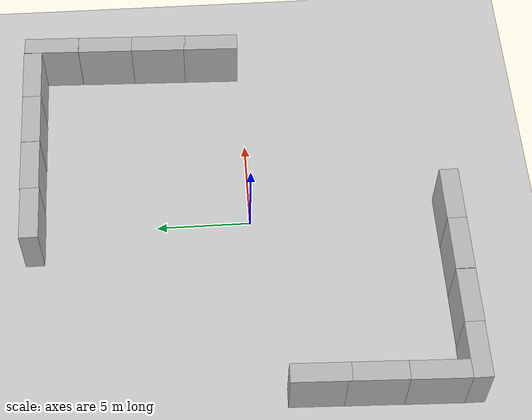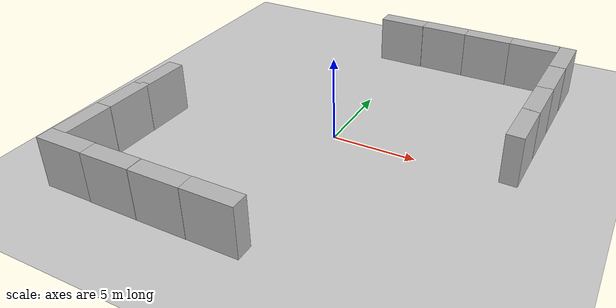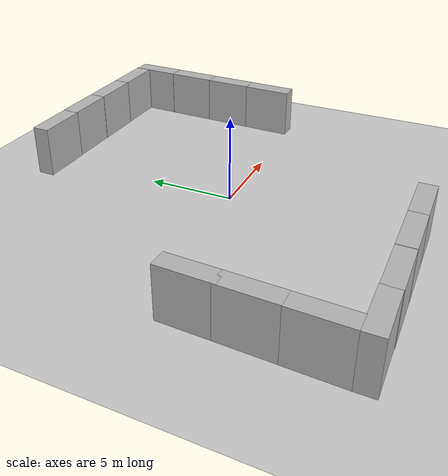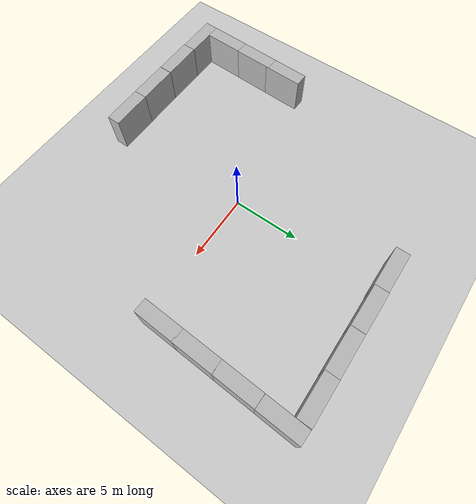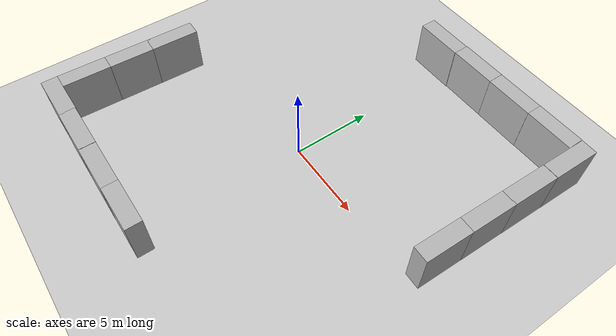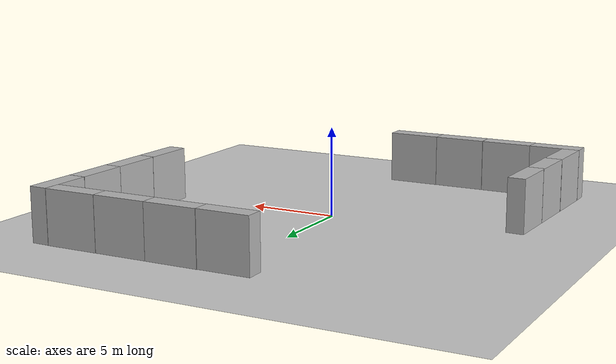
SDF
<sdf version="1.6">
 <world name="default">
  <scene><ambient>0.4 0.4 0.4 1</ambient><background>0.7 0.7 0.7 1</background><shadows>0</shadows></scene>
  <light name="sun" type="directional">
   <cast_shadows>0</cast_shadows>
   <pose>0 0 10 0 -0 0</pose>
   <diffuse>0.8 0.8 0.8 1</diffuse>
   <specular>0.2 0.2 0.2 1</specular>
   <attenuation>
    <range>1000</range>
    <constant>0.9</constant>
    <linear>0.01</linear>
    <quadratic>0.001</quadratic>
   </attenuation>
   <direction>-0.5 0.1 -0.9</direction>
  </light>
  <model name="ground_plane">
   <static>1</static>
   <link name="link">
    <collision name="collision">
     <geometry><plane><normal>0 0 1</normal><size>100 100</size></plane></geometry>
     <surface><friction><ode><mu>100</mu><mu2>50</mu2></ode></friction></surface>
    </collision>
    <visual name="visual">
     <cast_shadows>0</cast_shadows>
     <geometry><plane><normal>0 0 1</normal><size>100 100</size></plane></geometry>
     <material>
      <script><uri>file://media/materials/scripts/gazebo.material</uri><name>Gazebo/Grey</name></script>
     </material>
    </visual>
   </link>
  </model>
  <physics name="default_physics" default="0" type="ode">
   <real_time_update_rate>1000</real_time_update_rate>
   <max_step_size>0.001</max_step_size>
   <real_time_factor>1</real_time_factor>
   <ode>
    <solver>
     <type>quick</type>
     <iters>150</iters>
     <precon_iters>0</precon_iters>
     <sor>1.4</sor>
     <use_dynamic_moi_rescaling>1</use_dynamic_moi_rescaling>
    </solver>
    <constraints>
     <cfm>1e-05</cfm>
     <erp>0.2</erp>
     <contact_max_correcting_vel>2000</contact_max_correcting_vel>
     <contact_surface_layer>0.01</contact_surface_layer>
    </constraints>
   </ode>
  </physics>
  <gravity>0 0 -9.8</gravity>
  <magnetic_field>6e-06 2.3e-05 -4.2e-05</magnetic_field>
  <atmosphere type="adiabatic"/>
  <spherical_coordinates>
   <surface_model>EARTH_WGS84</surface_model>
   <latitude_deg>0</latitude_deg>
   <longitude_deg>0</longitude_deg>
   <elevation>0</elevation>
   <heading_deg>0</heading_deg>
  </spherical_coordinates>
  <model name="brick_box_3x1x3">
   <static>1</static>
   <link name="chassis">
    <pose>0 0 1.5 0 -0 0</pose>
    <collision name="collision"><geometry><box><size>3 1 3</size></box></geometry></collision>
    <visual name="visual">
     <geometry><mesh><uri>model://brick_box_3x1x3/meshes/simple_box.dae</uri><scale>3 1 3</scale></mesh></geometry>
     <material>
      <script>
       <uri>model://brick_box_3x1x3/materials/scripts</uri>
       <uri>model://brick_box_3x1x3/materials/textures</uri>
       <name>BrickBox/Diffuse</name>
      </script>
     </material>
    </visual>
   </link>
   <pose>8.51231 11.5321 0 0 -0 0</pose>
  </model>
  <model name="brick_box_3x1x3_0">
   <static>1</static>
   <link name="chassis">
    <pose>0 0 1.5 0 -0 0</pose>
    <collision name="collision"><geometry><box><size>3 1 3</size></box></geometry></collision>
    <visual name="visual">
     <geometry><mesh><uri>model://brick_box_3x1x3/meshes/simple_box.dae</uri><scale>3 1 3</scale></mesh></geometry>
     <material>
      <script>
       <uri>model://brick_box_3x1x3/materials/scripts</uri>
       <uri>model://brick_box_3x1x3/materials/textures</uri>
       <name>BrickBox/Diffuse</name>
      </script>
     </material>
    </visual>
   </link>
   <pose>5.51295 11.5204 0 0 -0 0</pose>
  </model>
  <model name="brick_box_3x1x3_1">
   <static>1</static>
   <link name="chassis">
    <pose>0 0 1.5 0 -0 0</pose>
    <collision name="collision"><geometry><box><size>3 1 3</size></box></geometry></collision>
    <visual name="visual">
     <geometry><mesh><uri>model://brick_box_3x1x3/meshes/simple_box.dae</uri><scale>3 1 3</scale></mesh></geometry>
     <material>
      <script>
       <uri>model://brick_box_3x1x3/materials/scripts</uri>
       <uri>model://brick_box_3x1x3/materials/textures</uri>
       <name>BrickBox/Diffuse</name>
      </script>
     </material>
    </visual>
   </link>
   <pose>2.50753 11.5257 0 0 -0 0</pose>
  </model>
  <model name="brick_box_3x1x3_2">
   <static>1</static>
   <link name="chassis">
    <pose>0 0 1.5 0 -0 0</pose>
    <collision name="collision"><geometry><box><size>3 1 3</size></box></geometry></collision>
    <visual name="visual">
     <geometry><mesh><uri>model://brick_box_3x1x3/meshes/simple_box.dae</uri><scale>3 1 3</scale></mesh></geometry>
     <material>
      <script>
       <uri>model://brick_box_3x1x3/materials/scripts</uri>
       <uri>model://brick_box_3x1x3/materials/textures</uri>
       <name>BrickBox/Diffuse</name>
      </script>
     </material>
    </visual>
   </link>
   <pose>10.5 10.5 0 0 0 -1.6</pose>
  </model>
  <model name="brick_box_3x1x3_2_clone">
   <static>1</static>
   <link name="chassis">
    <pose>0 0 1.5 0 -0 0</pose>
    <collision name="collision"><geometry><box><size>3 1 3</size></box></geometry></collision>
    <visual name="visual">
     <geometry><mesh><uri>model://brick_box_3x1x3/meshes/simple_box.dae</uri><scale>3 1 3</scale></mesh></geometry>
     <material>
      <script>
       <uri>model://brick_box_3x1x3/materials/scripts</uri>
       <uri>model://brick_box_3x1x3/materials/textures</uri>
       <name>BrickBox/Diffuse</name>
      </script>
     </material>
    </visual>
   </link>
   <pose>10.408 7.49311 0 0 0 -1.6</pose>
  </model>
  <model name="brick_box_3x1x3_2_clone_0">
   <static>1</static>
   <link name="chassis">
    <pose>0 0 1.5 0 -0 0</pose>
    <collision name="collision"><geometry><box><size>3 1 3</size></box></geometry></collision>
    <visual name="visual">
     <geometry><mesh><uri>model://brick_box_3x1x3/meshes/simple_box.dae</uri><scale>3 1 3</scale></mesh></geometry>
     <material>
      <script>
       <uri>model://brick_box_3x1x3/materials/scripts</uri>
       <uri>model://brick_box_3x1x3/materials/textures</uri>
       <name>BrickBox/Diffuse</name>
      </script>
     </material>
    </visual>
   </link>
   <pose>10.3204 4.5392 0 0 0 -1.6</pose>
  </model>
  <model name="brick_box_3x1x3_2_clone_1">
   <static>1</static>
   <link name="chassis">
    <pose>0 0 1.5 0 -0 0</pose>
    <collision name="collision"><geometry><box><size>3 1 3</size></box></geometry></collision>
    <visual name="visual">
     <geometry><mesh><uri>model://brick_box_3x1x3/meshes/simple_box.dae</uri><scale>3 1 3</scale></mesh></geometry>
     <material>
      <script>
       <uri>model://brick_box_3x1x3/materials/scripts</uri>
       <uri>model://brick_box_3x1x3/materials/textures</uri>
       <name>BrickBox/Diffuse</name>
      </script>
     </material>
    </visual>
   </link>
   <pose>10.2323 1.62461 0 0 0 -1.6</pose>
  </model>
  <model name="brick_box_3x1x3_2_clone_1_clone">
   <static>1</static>
   <link name="chassis">
    <pose>0 0 1.5 0 -0 0</pose>
    <collision name="collision"><geometry><box><size>3 1 3</size></box></geometry></collision>
    <visual name="visual">
     <geometry><mesh><uri>model://brick_box_3x1x3/meshes/simple_box.dae</uri><scale>3 1 3</scale></mesh></geometry>
     <material>
      <script>
       <uri>model://brick_box_3x1x3/materials/scripts</uri>
       <uri>model://brick_box_3x1x3/materials/textures</uri>
       <name>BrickBox/Diffuse</name>
      </script>
     </material>
    </visual>
   </link>
   <pose>-10.4741 -8.49572 0 0 0 -1.6</pose>
  </model>
  <model name="brick_box_3x1x3_2_clone_1_clone_0">
   <static>1</static>
   <link name="chassis">
    <pose>0 0 1.5 0 -0 0</pose>
    <collision name="collision"><geometry><box><size>3 1 3</size></box></geometry></collision>
    <visual name="visual">
     <geometry><mesh><uri>model://brick_box_3x1x3/meshes/simple_box.dae</uri><scale>3 1 3</scale></mesh></geometry>
     <material>
      <script>
       <uri>model://brick_box_3x1x3/materials/scripts</uri>
       <uri>model://brick_box_3x1x3/materials/textures</uri>
       <name>BrickBox/Diffuse</name>
      </script>
     </material>
    </visual>
   </link>
   <pose>-10.3773 -5.51079 0 0 0 -1.6</pose>
  </model>
  <model name="brick_box_3x1x3_2_clone_1_clone_1">
   <static>1</static>
   <link name="chassis">
    <pose>0 0 1.5 0 -0 0</pose>
    <collision name="collision"><geometry><box><size>3 1 3</size></box></geometry></collision>
    <visual name="visual">
     <geometry><mesh><uri>model://brick_box_3x1x3/meshes/simple_box.dae</uri><scale>3 1 3</scale></mesh></geometry>
     <material>
      <script>
       <uri>model://brick_box_3x1x3/materials/scripts</uri>
       <uri>model://brick_box_3x1x3/materials/textures</uri>
       <name>BrickBox/Diffuse</name>
      </script>
     </material>
    </visual>
   </link>
   <pose>-10.2931 -2.72387 0 0 0 -1.6</pose>
  </model>
  <model name="brick_box_3x1x3_1_clone">
   <static>1</static>
   <link name="chassis">
    <pose>0 0 1.5 0 -0 0</pose>
    <collision name="collision"><geometry><box><size>3 1 3</size></box></geometry></collision>
    <visual name="visual">
     <geometry><mesh><uri>model://brick_box_3x1x3/meshes/simple_box.dae</uri><scale>3 1 3</scale></mesh></geometry>
     <material>
      <script>
       <uri>model://brick_box_3x1x3/materials/scripts</uri>
       <uri>model://brick_box_3x1x3/materials/textures</uri>
       <name>BrickBox/Diffuse</name>
      </script>
     </material>
    </visual>
   </link>
   <pose>-9.51989 -10.48 0 0 -0 0</pose>
  </model>
  <model name="brick_box_3x1x3_1_clone_0">
   <static>1</static>
   <link name="chassis">
    <pose>0 0 1.5 0 -0 0</pose>
    <collision name="collision"><geometry><box><size>3 1 3</size></box></geometry></collision>
    <visual name="visual">
     <geometry><mesh><uri>model://brick_box_3x1x3/meshes/simple_box.dae</uri><scale>3 1 3</scale></mesh></geometry>
     <material>
      <script>
       <uri>model://brick_box_3x1x3/materials/scripts</uri>
       <uri>model://brick_box_3x1x3/materials/textures</uri>
       <name>BrickBox/Diffuse</name>
      </script>
     </material>
    </visual>
   </link>
   <pose>-6.56111 -10.5008 0 0 -0 0</pose>
  </model>
  <model name="brick_box_3x1x3_1_clone_1">
   <static>1</static>
   <link name="chassis">
    <pose>0 0 1.5 0 -0 0</pose>
    <collision name="collision"><geometry><box><size>3 1 3</size></box></geometry></collision>
    <visual name="visual">
     <geometry><mesh><uri>model://brick_box_3x1x3/meshes/simple_box.dae</uri><scale>3 1 3</scale></mesh></geometry>
     <material>
      <script>
       <uri>model://brick_box_3x1x3/materials/scripts</uri>
       <uri>model://brick_box_3x1x3/materials/textures</uri>
       <name>BrickBox/Diffuse</name>
      </script>
     </material>
    </visual>
   </link>
   <pose>-3.54203 -10.5047 0 0 -0 0</pose>
  </model>
  <model name="brick_box_3x1x3_1_clone_2">
   <static>1</static>
   <link name="chassis">
    <pose>0 0 1.5 0 -0 0</pose>
    <collision name="collision"><geometry><box><size>3 1 3</size></box></geometry></collision>
    <visual name="visual">
     <geometry><mesh><uri>model://brick_box_3x1x3/meshes/simple_box.dae</uri><scale>3 1 3</scale></mesh></geometry>
     <material>
      <script>
       <uri>model://brick_box_3x1x3/materials/scripts</uri>
       <uri>model://brick_box_3x1x3/materials/textures</uri>
       <name>BrickBox/Diffuse</name>
      </script>
     </material>
    </visual>
   </link>
   <pose>-0.558762 -10.496 0 0 -0 0</pose>
  </model>
  <model name="brick_box_3x1x3_1_clone_3">
   <static>1</static>
   <link name="chassis">
    <pose>0 0 1.5 0 -0 0</pose>
    <collision name="collision"><geometry><box><size>3 1 3</size></box></geometry></collision>
    <visual name="visual">
     <geometry><mesh><uri>model://brick_box_3x1x3/meshes/simple_box.dae</uri><scale>3 1 3</scale></mesh></geometry>
     <material>
      <script>
       <uri>model://brick_box_3x1x3/materials/scripts</uri>
       <uri>model://brick_box_3x1x3/materials/textures</uri>
       <name>BrickBox/Diffuse</name>
      </script>
     </material>
    </visual>
   </link>
   <pose>-0.446952 11.4922 0 0 -0 0</pose>
  </model>
  <light name="user_spot_light_0" type="spot">
   <pose>8.96806 9.98161 1 0 -0 0</pose>
   <diffuse>0.5 0.5 0.5 1</diffuse>
   <specular>0.1 0.1 0.1 1</specular>
   <direction>0 0 -1</direction>
   <attenuation>
    <range>20</range>
    <constant>0.5</constant>
    <linear>0.01</linear>
    <quadratic>0.001</quadratic>
   </attenuation>
   <cast_shadows>0</cast_shadows>
   <spot><inner_angle>0.6</inner_angle><outer_angle>1</outer_angle><falloff>1</falloff></spot>
  </light>
  <light name="user_spot_light_1" type="spot">
   <pose>0.002844 10.0318 1 0 -0 0</pose>
   <diffuse>0.5 0.5 0.5 1</diffuse>
   <specular>0.1 0.1 0.1 1</specular>
   <direction>0 0 -1</direction>
   <attenuation>
    <range>20</range>
    <constant>0.5</constant>
    <linear>0.01</linear>
    <quadratic>0.001</quadratic>
   </attenuation>
   <cast_shadows>0</cast_shadows>
   <spot><inner_angle>0.6</inner_angle><outer_angle>1</outer_angle><falloff>1</falloff></spot>
  </light>
  <light name="user_spot_light_2" type="spot">
   <pose>0.026891 -8.98685 1 0 -0 0</pose>
   <diffuse>0.5 0.5 0.5 1</diffuse>
   <specular>0.1 0.1 0.1 1</specular>
   <direction>0 0 -1</direction>
   <attenuation>
    <range>20</range>
    <constant>0.5</constant>
    <linear>0.01</linear>
    <quadratic>0.001</quadratic>
   </attenuation>
   <cast_shadows>0</cast_shadows>
   <spot><inner_angle>0.6</inner_angle><outer_angle>1</outer_angle><falloff>1</falloff></spot>
  </light>
  <light name="user_spot_light_3" type="spot">
   <pose>-8.97887 -9.01392 1 0 -0 0</pose>
   <diffuse>0.5 0.5 0.5 1</diffuse>
   <specular>0.1 0.1 0.1 1</specular>
   <direction>0 0 -1</direction>
   <attenuation>
    <range>20</range>
    <constant>0.5</constant>
    <linear>0.01</linear>
    <quadratic>0.001</quadratic>
   </attenuation>
   <cast_shadows>0</cast_shadows>
   <spot><inner_angle>0.6</inner_angle><outer_angle>1</outer_angle><falloff>1</falloff></spot>
  </light>
 </world>
</sdf>
